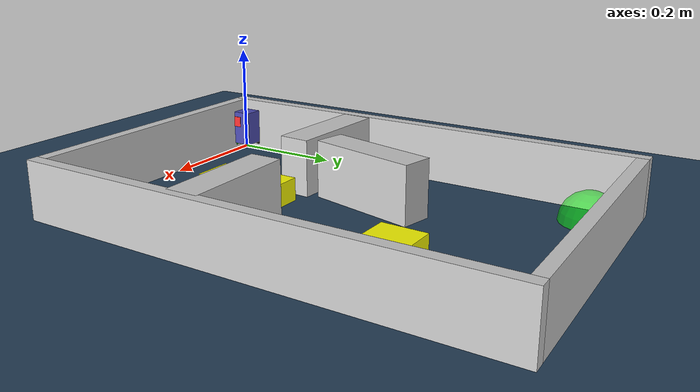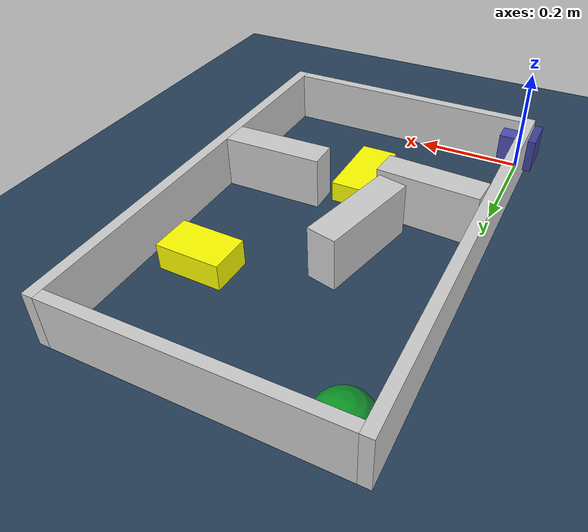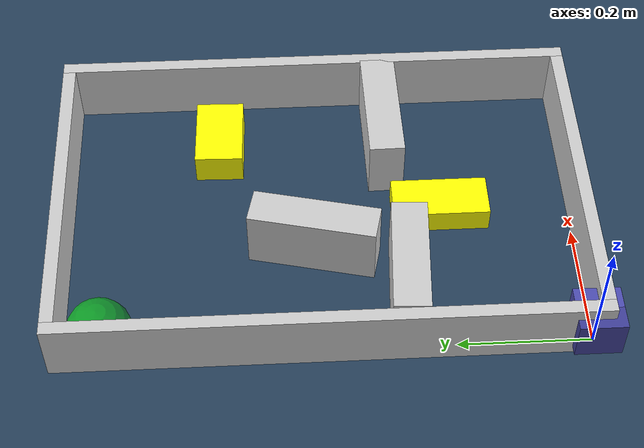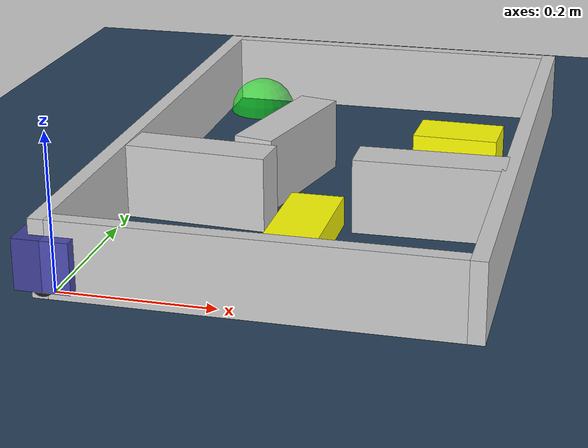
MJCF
<?xml version="1.0" ?>
<mujoco model="generated_environment">
  <option cone="elliptic" integrator="implicitfast" iterations="100" timestep="0.002"/>
  <default>
    <geom density="1"/>
  </default>
  <asset>
    <texture builtin="gradient" height="3072" rgb1="0.3 0.5 0.7" rgb2="0 0 0" type="skybox" width="512"/>
    <texture builtin="checker" height="300" mark="edge" markrgb="0.8 0.8 0.8" name="groundplane" rgb1="0.2 0.3 0.4" rgb2="0.1 0.2 0.3" type="2d" width="300"/>
    <material name="groundplane" reflectance="0.2" texrepeat="5 5" texture="groundplane" texuniform="true"/>
    <material name="robot" rgba="1.0 1.0 0.0 1.0"/>
  </asset>
  <include file="/home/dhruv/projects_dhruv/namo/namo_cpp/test_xml/little-car-modeling-package/assets/mjcf/little_car.xml"/>
  <worldbody>
    <light dir="0 0 -1" directional="true" pos="0 0 1.5"/>
    <geom condim="4" friction="0.5 0.005 0.001" material="groundplane" name="floor" size="0 0 0.05" type="plane"/>
    <body name="walls">
      <geom name="wall_1" condim="4" pos="-0.01 0.3875 0.05" friction="1 0.005 0.0001" rgba="0.800000011920929 0.800000011920929 0.800000011920929 1.0" size="0.01 0.40750000000000003 0.05" type="box"/>
      <geom name="wall_2" condim="4" pos="0.5 0.3875 0.05" friction="1 0.005 0.0001" rgba="0.800000011920929 0.800000011920929 0.800000011920929 1.0" size="0.01 0.40750000000000003 0.05" type="box"/>
      <geom name="wall_3" condim="4" pos="0.245 -0.01 0.05" friction="1 0.005 0.0001" rgba="0.800000011920929 0.800000011920929 0.800000011920929 1.0" size="0.245 0.01 0.05" type="box"/>
      <geom name="wall_4" condim="4" pos="0.245 0.785 0.05" friction="1 0.005 0.0001" rgba="0.800000011920929 0.800000011920929 0.800000011920929 1.0" size="0.245 0.01 0.05" type="box"/>
    </body>
    <body name="obstacle_1_movable">
      <geom name="obstacle_1_movable" condim="4" pos="0.2504094790488147 0.2020236191854921 0.02" quat="-8.017259072288771e-05 0 0 0.9999999967861778" friction="1 0.005 0.0001" rgba="1 1 0 1" size="0.035 0.075 0.02" type="box" mass="0.1"/>
      <joint type="free"/>
    </body>
    <body name="obstacle_2_movable">
      <geom name="obstacle_2_movable" condim="4" pos="0.3956227944206459 0.5451182039549167 0.025" quat="0.7158862083138527 0 0 0.698216969677775" friction="1 0.005 0.0001" rgba="1 1 0 1" size="0.0375 0.06 0.025" type="box" mass="0.1"/>
      <joint type="free"/>
    </body>
    <body name="wall_5">
      <geom name="wall_5" condim="4" pos="0.09684221625439766 0.2637026492387309 0.05" quat="-0.9995597932325466 0 0 0.02966849765169626" friction="1 0.005 0.0001" rgba="0.800000011920929 0.800000011920929 0.800000011920929 1.0" size="0.095 0.0275 0.05" type="box"/>
    </body>
    <body name="wall_6">
      <geom name="wall_6" condim="4" pos="0.17662656051579156 0.4012583138624678 0.05" quat="0.11331907451155032 0 0 0.9935586481692189" friction="1 0.005 0.0001" rgba="0.800000011920929 0.800000011920929 0.800000011920929 1.0" size="0.0275 0.0975 0.05" type="box"/>
    </body>
    <body name="wall_7">
      <geom name="wall_7" condim="4" pos="0.3975113215221973 0.2836261452532424 0.05" quat="0.7015835213304032 0 0 0.7125872315707261" friction="1 0.005 0.0001" rgba="0.800000011920929 0.800000011920929 0.800000011920929 1.0" size="0.0275 0.0975 0.05" type="box"/>
    </body>
    <site name="goal" type="sphere" size="0.05 0.05 0.05" rgba="0 1 0 0.5" pos="0.05 0.725 0.0"/>
  </worldbody>
</mujoco>

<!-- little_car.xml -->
<mujoco model="little_car">
  <compiler angle="radian" autolimits="true"/>
  <default>
    <geom condim="4"/>
    <joint damping="0.01" armature="0.0001"/>
  </default>
  <worldbody>
    <body name="car" pos="0 0 0.010000">
      <freejoint name="car_freejoint"/>
      <inertial pos="0.000000 0 0.037500" mass="0.350000"
                diaginertia="0.000266 0.000266 0.000286"/>
      <geom name="front_chassis_collision" type="box" pos="0.017500 0 0.037500"
            size="0.017500 0.035000 0.032500"
            rgba="0.3 0.3 0.7 1"/>
      <geom name="rear_chassis_collision" type="box" pos="-0.017500 0 0.037500"
            size="0.017500 0.035000 0.032500"
            rgba="0.25 0.25 0.6 1"/>
      <geom name="front_marker" type="box" pos="0.034000 0 0.050500"
            size="0.002000 0.015000 0.010000"
            rgba="1.0 0.2 0.2 1" contype="0" conaffinity="0"/>

      <body name="rear_support_body" pos="-0.030000 0.000000 0.002500">
        <joint name="rear_caster_joint" type="ball" damping="0.0001"/>
        <inertial pos="0 0 0" mass="0.025000"
                  diaginertia="0.000001 0.000001 0.000001"/>
        <geom name="rear_support" type="sphere"
              pos="0 0 0"
              size="0.002500"
              friction="0.000000 0.000000 0.000000"
              rgba="0.7 0.1 0.1 1"/>
      </body>

      <body name="front_support_body" pos="0.030000 0.000000 0.002500">
        <joint name="front_caster_joint" type="ball" damping="0.0001"/>
        <inertial pos="0 0 0" mass="0.025000"
                  diaginertia="0.000001 0.000001 0.000001"/>
        <geom name="front_support" type="sphere"
              pos="0 0 0"
              size="0.002500"
              friction="0.000000 0.000000 0.000000"
              rgba="0.1 0.7 0.1 1"/>
      </body>

      <body name="left_wheel" pos="0.000000 0.034000 0.015000">
        <inertial pos="0 0 0" mass="0.050000"
                  diaginertia="0.000003 0.000006 0.000003"/>
        <joint name="left_wheel_joint" type="hinge" axis="0 1 0"/>
        <geom name="left_wheel_collision" type="cylinder" size="0.015000 0.000500"
              euler="1.57079632679 0 0" rgba="0.1 0.1 0.1 1"/>
      </body>

      <body name="right_wheel" pos="0.000000 -0.034000 0.015000">
        <inertial pos="0 0 0" mass="0.050000"
                  diaginertia="0.000003 0.000006 0.000003"/>
        <joint name="right_wheel_joint" type="hinge" axis="0 1 0"/>
        <geom name="right_wheel_collision" type="cylinder" size="0.015000 0.000500"
              euler="1.57079632679 0 0" rgba="0.1 0.1 0.1 1"/>
      </body>
    </body>
  </worldbody>
  <contact>
    <exclude body1="car" body2="left_wheel"/>
    <exclude body1="car" body2="right_wheel"/>
  </contact>
  <actuator>
    <velocity name="left_wheel_drive" joint="left_wheel_joint"
              ctrlrange="-25.000000 25.000000"
              kv="0.750000" forcerange="-0.500000 0.500000"/>
    <velocity name="right_wheel_drive" joint="right_wheel_joint"
              ctrlrange="-25.000000 25.000000"
              kv="0.750000" forcerange="-0.500000 0.500000"/>
  </actuator>
</mujoco>
